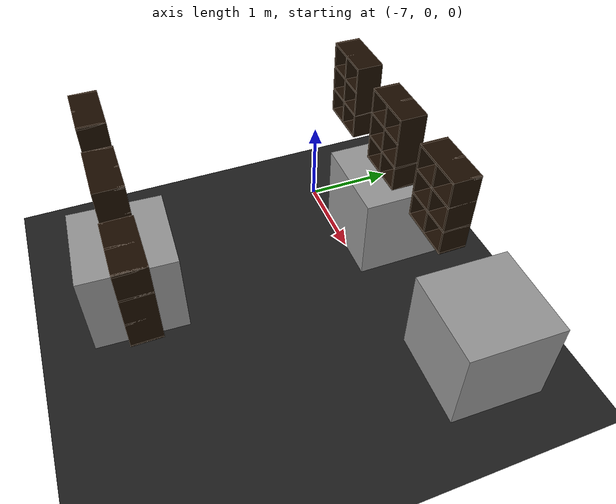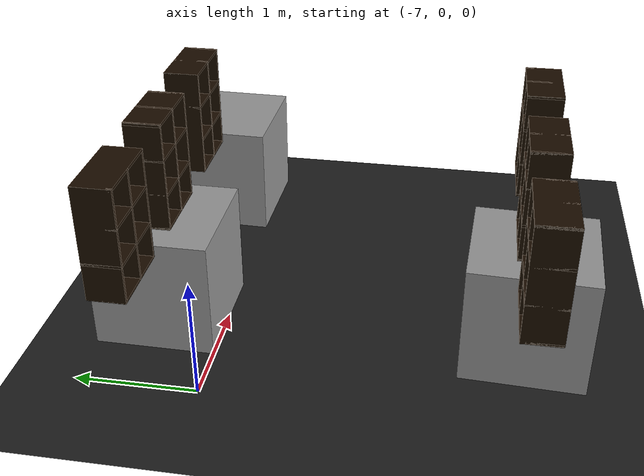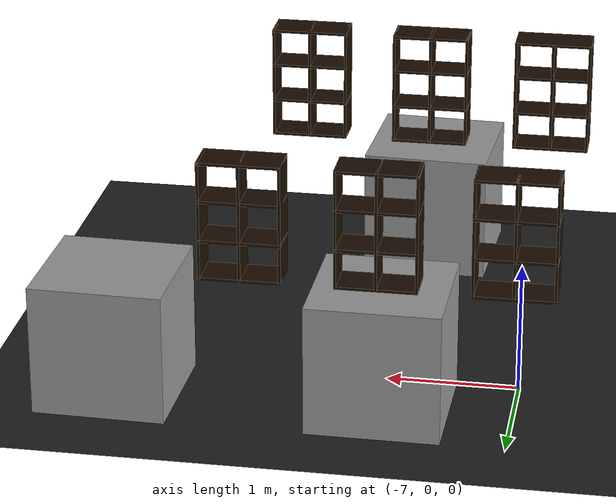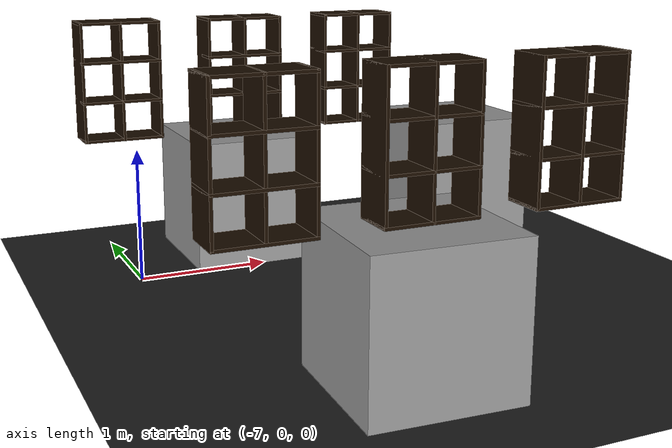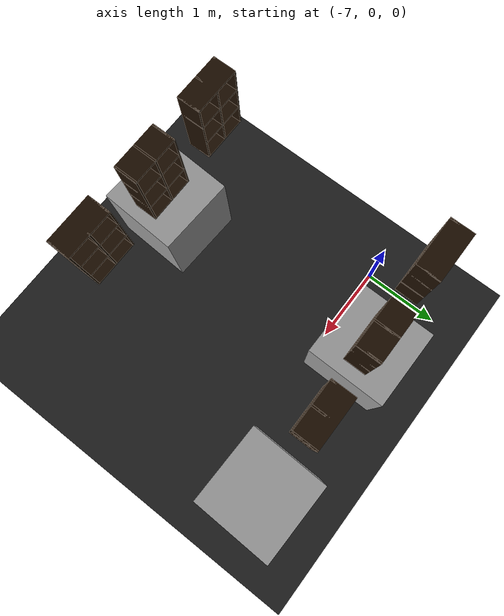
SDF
<sdf version="1.7">
 <world name="default">
  <model name="ground_plane">
   <static>1</static>
   <link name="link">
    <collision name="collision">
     <geometry><plane><normal>0 0 1</normal><size>100 100</size></plane></geometry>
     <surface><friction><ode><mu>100</mu><mu2>50</mu2></ode></friction></surface>
    </collision>
    <visual name="visual">
     <cast_shadows>0</cast_shadows>
     <geometry><plane><normal>0 0 1</normal><size>100 100</size></plane></geometry>
     <material>
      <script><uri>file://media/materials/scripts/gazebo.material</uri><name>Gazebo/BlackTransparent</name></script>
     </material>
    </visual>
   </link>
  </model>
  <model name="unit_box_1">
   <pose>-6.03193 0.498311 0.5 -0 -0 -0.007554</pose>
   <link name="link">
    <inertial>
     <mass>1</mass>
     <inertia>
      <ixx>0.166667</ixx>
      <ixy>0</ixy>
      <ixz>0</ixz>
      <iyy>0.166667</iyy>
      <iyz>0</iyz>
      <izz>0.166667</izz>
     </inertia>
    </inertial>
    <collision name="collision"><geometry><box><size>1 1 1</size></box></geometry></collision>
    <visual name="visual">
     <geometry><box><size>1 1 1</size></box></geometry>
     <material>
      <script><name>Gazebo/Grey</name><uri>file://media/materials/scripts/gazebo.material</uri></script>
     </material>
    </visual>
   </link>
  </model>
  <model name="unit_box_2">
   <pose>-6.04016 -2.49948 0.5 0 -0 -0.047603</pose>
   <link name="link">
    <inertial>
     <mass>1</mass>
     <inertia>
      <ixx>0.166667</ixx>
      <ixy>0</ixy>
      <ixz>0</ixz>
      <iyy>0.166667</iyy>
      <iyz>0</iyz>
      <izz>0.166667</izz>
     </inertia>
    </inertial>
    <collision name="collision"><geometry><box><size>1 1 1</size></box></geometry></collision>
    <visual name="visual">
     <geometry><box><size>1 1 1</size></box></geometry>
     <material>
      <script><name>Gazebo/Grey</name><uri>file://media/materials/scripts/gazebo.material</uri></script>
     </material>
    </visual>
   </link>
  </model>
  <model name="unit_box_16">
   <pose>-4.00948 0.496848 0.5 0 -0 -0.024916</pose>
   <link name="link">
    <inertial>
     <mass>1</mass>
     <inertia>
      <ixx>0.166667</ixx>
      <ixy>0</ixy>
      <ixz>0</ixz>
      <iyy>0.166667</iyy>
      <iyz>0</iyz>
      <izz>0.166667</izz>
     </inertia>
    </inertial>
    <collision name="collision"><geometry><box><size>1 1 1</size></box></geometry></collision>
    <visual name="visual">
     <geometry><box><size>1 1 1</size></box></geometry>
     <material>
      <script><name>Gazebo/Grey</name><uri>file://media/materials/scripts/gazebo.material</uri></script>
     </material>
    </visual>
   </link>
  </model>
  <model name="6_Cube_StorageE_clone_28">
   <link name="Wall_0">
    <pose>0 0 0.01 0 -0 0</pose>
    <inertial>
     <mass>1.6201</mass>
     <inertia><ixx>0.0119</ixx><iyy>0.0631</iyy><izz>0.0513</izz><ixy>0</ixy><ixz>0</ixz><iyz>0</iyz></inertia>
    </inertial>
    <collision name="Wall_0_Collision"><geometry><box><size>0.616 0.296 0.02</size></box></geometry></collision>
    <visual name="Wall_0_Visual">
     <geometry><box><size>0.616 0.296 0.02</size></box></geometry>
     <material>
      <script><uri>file://media/materials/scripts/gazebo.material</uri><name>Gazebo/Grey</name></script>
      <ambient>0.105882 0.0509804 0 1</ambient>
     </material>
    </visual>
   </link>
   <joint name="0_2" type="fixed">
    <pose>-0.308 0 0 0 -0 0</pose>
    <parent>Wall_2</parent>
    <child>Wall_0</child>
    <axis><xyz>1 0 0</xyz><limit><lower>-1e+16</lower><upper>1e+16</upper></limit></axis>
   </joint>
   <joint name="0_12" type="fixed">
    <parent>Wall_12</parent>
    <child>Wall_0</child>
    <axis><xyz>0 0 1</xyz><limit><lower>-1e+16</lower><upper>1e+16</upper></limit></axis>
   </joint>
   <joint name="0_4" type="fixed">
    <pose>0.308 0 0 0 -0 0</pose>
    <parent>Wall_4</parent>
    <child>Wall_0</child>
    <axis><xyz>1 0 0</xyz><limit><lower>-1e+16</lower><upper>1e+16</upper></limit></axis>
   </joint>
   <link name="Wall_10">
    <pose>0 0 0.61 0 -0 0</pose>
    <inertial>
     <mass>1.6201</mass>
     <inertia><ixx>0.0119</ixx><iyy>0.0631</iyy><izz>0.0513</izz><ixy>0</ixy><ixz>0</ixz><iyz>0</iyz></inertia>
    </inertial>
    <collision name="Wall_10_Collision"><geometry><box><size>0.616 0.296 0.02</size></box></geometry></collision>
    <visual name="Wall_10_Visual">
     <geometry><box><size>0.616 0.296 0.02</size></box></geometry>
     <material>
      <script><uri>file://media/materials/scripts/gazebo.material</uri><name>Gazebo/Grey</name></script>
      <ambient>0.105882 0.0509804 0 1</ambient>
     </material>
    </visual>
   </link>
   <joint name="10_2" type="fixed">
    <pose>-0.308 0 0 0 -0 0</pose>
    <parent>Wall_2</parent>
    <child>Wall_10</child>
    <axis><xyz>1 0 0</xyz><limit><lower>-1e+16</lower><upper>1e+16</upper></limit></axis>
   </joint>
   <joint name="10_12" type="fixed">
    <parent>Wall_12</parent>
    <child>Wall_10</child>
    <axis><xyz>0 0 1</xyz><limit><lower>-1e+16</lower><upper>1e+16</upper></limit></axis>
   </joint>
   <joint name="10_4" type="fixed">
    <pose>0.308 0 0 0 -0 0</pose>
    <parent>Wall_4</parent>
    <child>Wall_10</child>
    <axis><xyz>1 0 0</xyz><limit><lower>-1e+16</lower><upper>1e+16</upper></limit></axis>
   </joint>
   <link name="Wall_12">
    <pose>0 0 0.4575 0 -0 0</pose>
    <inertial>
     <mass>2.4065</mass>
     <inertia><ixx>0.0177</ixx><iyy>0.1855</iyy><izz>0.168</izz><ixy>0</ixy><ixz>0</ixz><iyz>0</iyz></inertia>
    </inertial>
    <collision name="Wall_12_Collision"><geometry><box><size>0.02 0.296 0.915</size></box></geometry></collision>
    <visual name="Wall_12_Visual">
     <geometry><box><size>0.02 0.296 0.915</size></box></geometry>
     <material>
      <script><uri>file://media/materials/scripts/gazebo.material</uri><name>Gazebo/Grey</name></script>
      <ambient>0.105882 0.0509804 0 1</ambient>
     </material>
    </visual>
   </link>
   <link name="Wall_2">
    <pose>-0.298 0 0.4575 0 -0 0</pose>
    <inertial>
     <mass>2.4065</mass>
     <inertia><ixx>0.0177</ixx><iyy>0.1855</iyy><izz>0.168</izz><ixy>0</ixy><ixz>0</ixz><iyz>0</iyz></inertia>
    </inertial>
    <collision name="Wall_2_Collision"><geometry><box><size>0.02 0.296 0.915</size></box></geometry></collision>
    <visual name="Wall_2_Visual">
     <geometry><box><size>0.02 0.296 0.915</size></box></geometry>
     <material>
      <script><uri>file://media/materials/scripts/gazebo.material</uri><name>Gazebo/Grey</name></script>
      <ambient>0.105882 0.0509804 0 1</ambient>
     </material>
    </visual>
   </link>
   <link name="Wall_4">
    <pose>0.298 0 0.4575 0 -0 0</pose>
    <inertial>
     <mass>2.4065</mass>
     <inertia><ixx>0.0177</ixx><iyy>0.1855</iyy><izz>0.168</izz><ixy>0</ixy><ixz>0</ixz><iyz>0</iyz></inertia>
    </inertial>
    <collision name="Wall_4_Collision"><geometry><box><size>0.02 0.296 0.915</size></box></geometry></collision>
    <visual name="Wall_4_Visual">
     <geometry><box><size>0.02 0.296 0.915</size></box></geometry>
     <material>
      <script><uri>file://media/materials/scripts/gazebo.material</uri><name>Gazebo/Grey</name></script>
      <ambient>0.105882 0.0509804 0 1</ambient>
     </material>
    </visual>
   </link>
   <link name="Wall_6">
    <pose>0 0 0.905 0 -0 0</pose>
    <inertial>
     <mass>1.6201</mass>
     <inertia><ixx>0.0119</ixx><iyy>0.0631</iyy><izz>0.0513</izz><ixy>0</ixy><ixz>0</ixz><iyz>0</iyz></inertia>
    </inertial>
    <collision name="Wall_6_Collision"><geometry><box><size>0.616 0.296 0.02</size></box></geometry></collision>
    <visual name="Wall_6_Visual">
     <geometry><box><size>0.616 0.296 0.02</size></box></geometry>
     <material>
      <script><uri>file://media/materials/scripts/gazebo.material</uri><name>Gazebo/Grey</name></script>
      <ambient>0.105882 0.0509804 0 1</ambient>
     </material>
    </visual>
   </link>
   <joint name="6_2" type="fixed">
    <pose>-0.308 0 0 0 -0 0</pose>
    <parent>Wall_2</parent>
    <child>Wall_6</child>
    <axis><xyz>2 0 0</xyz><limit><lower>-1e+16</lower><upper>1e+16</upper></limit></axis>
   </joint>
   <joint name="6_12" type="fixed">
    <parent>Wall_12</parent>
    <child>Wall_6</child>
    <axis><xyz>0 0 1</xyz><limit><lower>-1e+16</lower><upper>1e+16</upper></limit></axis>
   </joint>
   <joint name="6_4" type="fixed">
    <pose>0.308 0 0 0 -0 0</pose>
    <parent>Wall_4</parent>
    <child>Wall_6</child>
    <axis><xyz>1 0 0</xyz><limit><lower>-1e+16</lower><upper>1e+16</upper></limit></axis>
   </joint>
   <link name="Wall_8">
    <pose>0 0 0.305 0 -0 0</pose>
    <inertial>
     <mass>1.6201</mass>
     <inertia><ixx>0.0119</ixx><iyy>0.0631</iyy><izz>0.0513</izz><ixy>0</ixy><ixz>0</ixz><iyz>0</iyz></inertia>
    </inertial>
    <collision name="Wall_8_Collision"><geometry><box><size>0.616 0.296 0.02</size></box></geometry></collision>
    <visual name="Wall_8_Visual">
     <geometry><box><size>0.616 0.296 0.02</size></box></geometry>
     <material>
      <script><uri>file://media/materials/scripts/gazebo.material</uri><name>Gazebo/Grey</name></script>
      <ambient>0.105882 0.0509804 0 1</ambient>
     </material>
    </visual>
   </link>
   <joint name="8_2" type="fixed">
    <pose>-0.308 0 0 0 -0 0</pose>
    <parent>Wall_2</parent>
    <child>Wall_8</child>
    <axis><xyz>1 0 0</xyz><limit><lower>-1e+16</lower><upper>1e+16</upper></limit></axis>
   </joint>
   <joint name="8_12" type="fixed">
    <parent>Wall_12</parent>
    <child>Wall_8</child>
    <axis><xyz>0 0 1</xyz><limit><lower>-1e+16</lower><upper>1e+16</upper></limit></axis>
   </joint>
   <joint name="8_4" type="fixed">
    <pose>0.308 0 0 0 -0 0</pose>
    <parent>Wall_4</parent>
    <child>Wall_8</child>
    <axis><xyz>1 0 0</xyz><limit><lower>-1e+16</lower><upper>1e+16</upper></limit></axis>
   </joint>
   <static>1</static>
   <pose>-7 0.5 1.01 0 -0 0</pose>
  </model>
  <model name="6_Cube_StorageE_clone_29">
   <link name="Wall_0">
    <pose>0 0 0.01 0 -0 0</pose>
    <inertial>
     <mass>1.6201</mass>
     <inertia><ixx>0.0119</ixx><iyy>0.0631</iyy><izz>0.0513</izz><ixy>0</ixy><ixz>0</ixz><iyz>0</iyz></inertia>
    </inertial>
    <collision name="Wall_0_Collision"><geometry><box><size>0.616 0.296 0.02</size></box></geometry></collision>
    <visual name="Wall_0_Visual">
     <geometry><box><size>0.616 0.296 0.02</size></box></geometry>
     <material>
      <script><uri>file://media/materials/scripts/gazebo.material</uri><name>Gazebo/Grey</name></script>
      <ambient>0.105882 0.0509804 0 1</ambient>
     </material>
    </visual>
   </link>
   <joint name="0_2" type="fixed">
    <pose>-0.308 0 0 0 -0 0</pose>
    <parent>Wall_2</parent>
    <child>Wall_0</child>
    <axis><xyz>1 0 0</xyz><limit><lower>-1e+16</lower><upper>1e+16</upper></limit></axis>
   </joint>
   <joint name="0_12" type="fixed">
    <parent>Wall_12</parent>
    <child>Wall_0</child>
    <axis><xyz>0 0 1</xyz><limit><lower>-1e+16</lower><upper>1e+16</upper></limit></axis>
   </joint>
   <joint name="0_4" type="fixed">
    <pose>0.308 0 0 0 -0 0</pose>
    <parent>Wall_4</parent>
    <child>Wall_0</child>
    <axis><xyz>1 0 0</xyz><limit><lower>-1e+16</lower><upper>1e+16</upper></limit></axis>
   </joint>
   <link name="Wall_10">
    <pose>0 0 0.61 0 -0 0</pose>
    <inertial>
     <mass>1.6201</mass>
     <inertia><ixx>0.0119</ixx><iyy>0.0631</iyy><izz>0.0513</izz><ixy>0</ixy><ixz>0</ixz><iyz>0</iyz></inertia>
    </inertial>
    <collision name="Wall_10_Collision"><geometry><box><size>0.616 0.296 0.02</size></box></geometry></collision>
    <visual name="Wall_10_Visual">
     <geometry><box><size>0.616 0.296 0.02</size></box></geometry>
     <material>
      <script><uri>file://media/materials/scripts/gazebo.material</uri><name>Gazebo/Grey</name></script>
      <ambient>0.105882 0.0509804 0 1</ambient>
     </material>
    </visual>
   </link>
   <joint name="10_2" type="fixed">
    <pose>-0.308 0 0 0 -0 0</pose>
    <parent>Wall_2</parent>
    <child>Wall_10</child>
    <axis><xyz>1 0 0</xyz><limit><lower>-1e+16</lower><upper>1e+16</upper></limit></axis>
   </joint>
   <joint name="10_12" type="fixed">
    <parent>Wall_12</parent>
    <child>Wall_10</child>
    <axis><xyz>0 0 1</xyz><limit><lower>-1e+16</lower><upper>1e+16</upper></limit></axis>
   </joint>
   <joint name="10_4" type="fixed">
    <pose>0.308 0 0 0 -0 0</pose>
    <parent>Wall_4</parent>
    <child>Wall_10</child>
    <axis><xyz>1 0 0</xyz><limit><lower>-1e+16</lower><upper>1e+16</upper></limit></axis>
   </joint>
   <link name="Wall_12">
    <pose>0 0 0.4575 0 -0 0</pose>
    <inertial>
     <mass>2.4065</mass>
     <inertia><ixx>0.0177</ixx><iyy>0.1855</iyy><izz>0.168</izz><ixy>0</ixy><ixz>0</ixz><iyz>0</iyz></inertia>
    </inertial>
    <collision name="Wall_12_Collision"><geometry><box><size>0.02 0.296 0.915</size></box></geometry></collision>
    <visual name="Wall_12_Visual">
     <geometry><box><size>0.02 0.296 0.915</size></box></geometry>
     <material>
      <script><uri>file://media/materials/scripts/gazebo.material</uri><name>Gazebo/Grey</name></script>
      <ambient>0.105882 0.0509804 0 1</ambient>
     </material>
    </visual>
   </link>
   <link name="Wall_2">
    <pose>-0.298 0 0.4575 0 -0 0</pose>
    <inertial>
     <mass>2.4065</mass>
     <inertia><ixx>0.0177</ixx><iyy>0.1855</iyy><izz>0.168</izz><ixy>0</ixy><ixz>0</ixz><iyz>0</iyz></inertia>
    </inertial>
    <collision name="Wall_2_Collision"><geometry><box><size>0.02 0.296 0.915</size></box></geometry></collision>
    <visual name="Wall_2_Visual">
     <geometry><box><size>0.02 0.296 0.915</size></box></geometry>
     <material>
      <script><uri>file://media/materials/scripts/gazebo.material</uri><name>Gazebo/Grey</name></script>
      <ambient>0.105882 0.0509804 0 1</ambient>
     </material>
    </visual>
   </link>
   <link name="Wall_4">
    <pose>0.298 0 0.4575 0 -0 0</pose>
    <inertial>
     <mass>2.4065</mass>
     <inertia><ixx>0.0177</ixx><iyy>0.1855</iyy><izz>0.168</izz><ixy>0</ixy><ixz>0</ixz><iyz>0</iyz></inertia>
    </inertial>
    <collision name="Wall_4_Collision"><geometry><box><size>0.02 0.296 0.915</size></box></geometry></collision>
    <visual name="Wall_4_Visual">
     <geometry><box><size>0.02 0.296 0.915</size></box></geometry>
     <material>
      <script><uri>file://media/materials/scripts/gazebo.material</uri><name>Gazebo/Grey</name></script>
      <ambient>0.105882 0.0509804 0 1</ambient>
     </material>
    </visual>
   </link>
   <link name="Wall_6">
    <pose>0 0 0.905 0 -0 0</pose>
    <inertial>
     <mass>1.6201</mass>
     <inertia><ixx>0.0119</ixx><iyy>0.0631</iyy><izz>0.0513</izz><ixy>0</ixy><ixz>0</ixz><iyz>0</iyz></inertia>
    </inertial>
    <collision name="Wall_6_Collision"><geometry><box><size>0.616 0.296 0.02</size></box></geometry></collision>
    <visual name="Wall_6_Visual">
     <geometry><box><size>0.616 0.296 0.02</size></box></geometry>
     <material>
      <script><uri>file://media/materials/scripts/gazebo.material</uri><name>Gazebo/Grey</name></script>
      <ambient>0.105882 0.0509804 0 1</ambient>
     </material>
    </visual>
   </link>
   <joint name="6_2" type="fixed">
    <pose>-0.308 0 0 0 -0 0</pose>
    <parent>Wall_2</parent>
    <child>Wall_6</child>
    <axis><xyz>2 0 0</xyz><limit><lower>-1e+16</lower><upper>1e+16</upper></limit></axis>
   </joint>
   <joint name="6_12" type="fixed">
    <parent>Wall_12</parent>
    <child>Wall_6</child>
    <axis><xyz>0 0 1</xyz><limit><lower>-1e+16</lower><upper>1e+16</upper></limit></axis>
   </joint>
   <joint name="6_4" type="fixed">
    <pose>0.308 0 0 0 -0 0</pose>
    <parent>Wall_4</parent>
    <child>Wall_6</child>
    <axis><xyz>1 0 0</xyz><limit><lower>-1e+16</lower><upper>1e+16</upper></limit></axis>
   </joint>
   <link name="Wall_8">
    <pose>0 0 0.305 0 -0 0</pose>
    <inertial>
     <mass>1.6201</mass>
     <inertia><ixx>0.0119</ixx><iyy>0.0631</iyy><izz>0.0513</izz><ixy>0</ixy><ixz>0</ixz><iyz>0</iyz></inertia>
    </inertial>
    <collision name="Wall_8_Collision"><geometry><box><size>0.616 0.296 0.02</size></box></geometry></collision>
    <visual name="Wall_8_Visual">
     <geometry><box><size>0.616 0.296 0.02</size></box></geometry>
     <material>
      <script><uri>file://media/materials/scripts/gazebo.material</uri><name>Gazebo/Grey</name></script>
      <ambient>0.105882 0.0509804 0 1</ambient>
     </material>
    </visual>
   </link>
   <joint name="8_2" type="fixed">
    <pose>-0.308 0 0 0 -0 0</pose>
    <parent>Wall_2</parent>
    <child>Wall_8</child>
    <axis><xyz>1 0 0</xyz><limit><lower>-1e+16</lower><upper>1e+16</upper></limit></axis>
   </joint>
   <joint name="8_12" type="fixed">
    <parent>Wall_12</parent>
    <child>Wall_8</child>
    <axis><xyz>0 0 1</xyz><limit><lower>-1e+16</lower><upper>1e+16</upper></limit></axis>
   </joint>
   <joint name="8_4" type="fixed">
    <pose>0.308 0 0 0 -0 0</pose>
    <parent>Wall_4</parent>
    <child>Wall_8</child>
    <axis><xyz>1 0 0</xyz><limit><lower>-1e+16</lower><upper>1e+16</upper></limit></axis>
   </joint>
   <static>1</static>
   <pose>-6 0.5 1.01 0 -0 0</pose>
  </model>
  <model name="6_Cube_StorageE_clone_30">
   <link name="Wall_0">
    <pose>0 0 0.01 0 -0 0</pose>
    <inertial>
     <mass>1.6201</mass>
     <inertia><ixx>0.0119</ixx><iyy>0.0631</iyy><izz>0.0513</izz><ixy>0</ixy><ixz>0</ixz><iyz>0</iyz></inertia>
    </inertial>
    <collision name="Wall_0_Collision"><geometry><box><size>0.616 0.296 0.02</size></box></geometry></collision>
    <visual name="Wall_0_Visual">
     <geometry><box><size>0.616 0.296 0.02</size></box></geometry>
     <material>
      <script><uri>file://media/materials/scripts/gazebo.material</uri><name>Gazebo/Grey</name></script>
      <ambient>0.105882 0.0509804 0 1</ambient>
     </material>
    </visual>
   </link>
   <joint name="0_2" type="fixed">
    <pose>-0.308 0 0 0 -0 0</pose>
    <parent>Wall_2</parent>
    <child>Wall_0</child>
    <axis><xyz>1 0 0</xyz><limit><lower>-1e+16</lower><upper>1e+16</upper></limit></axis>
   </joint>
   <joint name="0_12" type="fixed">
    <parent>Wall_12</parent>
    <child>Wall_0</child>
    <axis><xyz>0 0 1</xyz><limit><lower>-1e+16</lower><upper>1e+16</upper></limit></axis>
   </joint>
   <joint name="0_4" type="fixed">
    <pose>0.308 0 0 0 -0 0</pose>
    <parent>Wall_4</parent>
    <child>Wall_0</child>
    <axis><xyz>1 0 0</xyz><limit><lower>-1e+16</lower><upper>1e+16</upper></limit></axis>
   </joint>
   <link name="Wall_10">
    <pose>0 0 0.61 0 -0 0</pose>
    <inertial>
     <mass>1.6201</mass>
     <inertia><ixx>0.0119</ixx><iyy>0.0631</iyy><izz>0.0513</izz><ixy>0</ixy><ixz>0</ixz><iyz>0</iyz></inertia>
    </inertial>
    <collision name="Wall_10_Collision"><geometry><box><size>0.616 0.296 0.02</size></box></geometry></collision>
    <visual name="Wall_10_Visual">
     <geometry><box><size>0.616 0.296 0.02</size></box></geometry>
     <material>
      <script><uri>file://media/materials/scripts/gazebo.material</uri><name>Gazebo/Grey</name></script>
      <ambient>0.105882 0.0509804 0 1</ambient>
     </material>
    </visual>
   </link>
   <joint name="10_2" type="fixed">
    <pose>-0.308 0 0 0 -0 0</pose>
    <parent>Wall_2</parent>
    <child>Wall_10</child>
    <axis><xyz>1 0 0</xyz><limit><lower>-1e+16</lower><upper>1e+16</upper></limit></axis>
   </joint>
   <joint name="10_12" type="fixed">
    <parent>Wall_12</parent>
    <child>Wall_10</child>
    <axis><xyz>0 0 1</xyz><limit><lower>-1e+16</lower><upper>1e+16</upper></limit></axis>
   </joint>
   <joint name="10_4" type="fixed">
    <pose>0.308 0 0 0 -0 0</pose>
    <parent>Wall_4</parent>
    <child>Wall_10</child>
    <axis><xyz>1 0 0</xyz><limit><lower>-1e+16</lower><upper>1e+16</upper></limit></axis>
   </joint>
   <link name="Wall_12">
    <pose>0 0 0.4575 0 -0 0</pose>
    <inertial>
     <mass>2.4065</mass>
     <inertia><ixx>0.0177</ixx><iyy>0.1855</iyy><izz>0.168</izz><ixy>0</ixy><ixz>0</ixz><iyz>0</iyz></inertia>
    </inertial>
    <collision name="Wall_12_Collision"><geometry><box><size>0.02 0.296 0.915</size></box></geometry></collision>
    <visual name="Wall_12_Visual">
     <geometry><box><size>0.02 0.296 0.915</size></box></geometry>
     <material>
      <script><uri>file://media/materials/scripts/gazebo.material</uri><name>Gazebo/Grey</name></script>
      <ambient>0.105882 0.0509804 0 1</ambient>
     </material>
    </visual>
   </link>
   <link name="Wall_2">
    <pose>-0.298 0 0.4575 0 -0 0</pose>
    <inertial>
     <mass>2.4065</mass>
     <inertia><ixx>0.0177</ixx><iyy>0.1855</iyy><izz>0.168</izz><ixy>0</ixy><ixz>0</ixz><iyz>0</iyz></inertia>
    </inertial>
    <collision name="Wall_2_Collision"><geometry><box><size>0.02 0.296 0.915</size></box></geometry></collision>
    <visual name="Wall_2_Visual">
     <geometry><box><size>0.02 0.296 0.915</size></box></geometry>
     <material>
      <script><uri>file://media/materials/scripts/gazebo.material</uri><name>Gazebo/Grey</name></script>
      <ambient>0.105882 0.0509804 0 1</ambient>
     </material>
    </visual>
   </link>
   <link name="Wall_4">
    <pose>0.298 0 0.4575 0 -0 0</pose>
    <inertial>
     <mass>2.4065</mass>
     <inertia><ixx>0.0177</ixx><iyy>0.1855</iyy><izz>0.168</izz><ixy>0</ixy><ixz>0</ixz><iyz>0</iyz></inertia>
    </inertial>
    <collision name="Wall_4_Collision"><geometry><box><size>0.02 0.296 0.915</size></box></geometry></collision>
    <visual name="Wall_4_Visual">
     <geometry><box><size>0.02 0.296 0.915</size></box></geometry>
     <material>
      <script><uri>file://media/materials/scripts/gazebo.material</uri><name>Gazebo/Grey</name></script>
      <ambient>0.105882 0.0509804 0 1</ambient>
     </material>
    </visual>
   </link>
   <link name="Wall_6">
    <pose>0 0 0.905 0 -0 0</pose>
    <inertial>
     <mass>1.6201</mass>
     <inertia><ixx>0.0119</ixx><iyy>0.0631</iyy><izz>0.0513</izz><ixy>0</ixy><ixz>0</ixz><iyz>0</iyz></inertia>
    </inertial>
    <collision name="Wall_6_Collision"><geometry><box><size>0.616 0.296 0.02</size></box></geometry></collision>
    <visual name="Wall_6_Visual">
     <geometry><box><size>0.616 0.296 0.02</size></box></geometry>
     <material>
      <script><uri>file://media/materials/scripts/gazebo.material</uri><name>Gazebo/Grey</name></script>
      <ambient>0.105882 0.0509804 0 1</ambient>
     </material>
    </visual>
   </link>
   <joint name="6_2" type="fixed">
    <pose>-0.308 0 0 0 -0 0</pose>
    <parent>Wall_2</parent>
    <child>Wall_6</child>
    <axis><xyz>2 0 0</xyz><limit><lower>-1e+16</lower><upper>1e+16</upper></limit></axis>
   </joint>
   <joint name="6_12" type="fixed">
    <parent>Wall_12</parent>
    <child>Wall_6</child>
    <axis><xyz>0 0 1</xyz><limit><lower>-1e+16</lower><upper>1e+16</upper></limit></axis>
   </joint>
   <joint name="6_4" type="fixed">
    <pose>0.308 0 0 0 -0 0</pose>
    <parent>Wall_4</parent>
    <child>Wall_6</child>
    <axis><xyz>1 0 0</xyz><limit><lower>-1e+16</lower><upper>1e+16</upper></limit></axis>
   </joint>
   <link name="Wall_8">
    <pose>0 0 0.305 0 -0 0</pose>
    <inertial>
     <mass>1.6201</mass>
     <inertia><ixx>0.0119</ixx><iyy>0.0631</iyy><izz>0.0513</izz><ixy>0</ixy><ixz>0</ixz><iyz>0</iyz></inertia>
    </inertial>
    <collision name="Wall_8_Collision"><geometry><box><size>0.616 0.296 0.02</size></box></geometry></collision>
    <visual name="Wall_8_Visual">
     <geometry><box><size>0.616 0.296 0.02</size></box></geometry>
     <material>
      <script><uri>file://media/materials/scripts/gazebo.material</uri><name>Gazebo/Grey</name></script>
      <ambient>0.105882 0.0509804 0 1</ambient>
     </material>
    </visual>
   </link>
   <joint name="8_2" type="fixed">
    <pose>-0.308 0 0 0 -0 0</pose>
    <parent>Wall_2</parent>
    <child>Wall_8</child>
    <axis><xyz>1 0 0</xyz><limit><lower>-1e+16</lower><upper>1e+16</upper></limit></axis>
   </joint>
   <joint name="8_12" type="fixed">
    <parent>Wall_12</parent>
    <child>Wall_8</child>
    <axis><xyz>0 0 1</xyz><limit><lower>-1e+16</lower><upper>1e+16</upper></limit></axis>
   </joint>
   <joint name="8_4" type="fixed">
    <pose>0.308 0 0 0 -0 0</pose>
    <parent>Wall_4</parent>
    <child>Wall_8</child>
    <axis><xyz>1 0 0</xyz><limit><lower>-1e+16</lower><upper>1e+16</upper></limit></axis>
   </joint>
   <static>1</static>
   <pose>-5 0.5 1.01 0 -0 0</pose>
  </model>
  <model name="6_Cube_StorageE_clone_55">
   <link name="Wall_0">
    <pose>0 0 0.01 0 -0 0</pose>
    <inertial>
     <mass>1.6201</mass>
     <inertia><ixx>0.0119</ixx><iyy>0.0631</iyy><izz>0.0513</izz><ixy>0</ixy><ixz>0</ixz><iyz>0</iyz></inertia>
    </inertial>
    <collision name="Wall_0_Collision"><geometry><box><size>0.616 0.296 0.02</size></box></geometry></collision>
    <visual name="Wall_0_Visual">
     <geometry><box><size>0.616 0.296 0.02</size></box></geometry>
     <material>
      <script><uri>file://media/materials/scripts/gazebo.material</uri><name>Gazebo/Grey</name></script>
      <ambient>0.105882 0.0509804 0 1</ambient>
     </material>
    </visual>
   </link>
   <joint name="0_2" type="fixed">
    <pose>-0.308 0 0 0 -0 0</pose>
    <parent>Wall_2</parent>
    <child>Wall_0</child>
    <axis><xyz>1 0 0</xyz><limit><lower>-1e+16</lower><upper>1e+16</upper></limit></axis>
   </joint>
   <joint name="0_12" type="fixed">
    <parent>Wall_12</parent>
    <child>Wall_0</child>
    <axis><xyz>0 0 1</xyz><limit><lower>-1e+16</lower><upper>1e+16</upper></limit></axis>
   </joint>
   <joint name="0_4" type="fixed">
    <pose>0.308 0 0 0 -0 0</pose>
    <parent>Wall_4</parent>
    <child>Wall_0</child>
    <axis><xyz>1 0 0</xyz><limit><lower>-1e+16</lower><upper>1e+16</upper></limit></axis>
   </joint>
   <link name="Wall_10">
    <pose>0 0 0.61 0 -0 0</pose>
    <inertial>
     <mass>1.6201</mass>
     <inertia><ixx>0.0119</ixx><iyy>0.0631</iyy><izz>0.0513</izz><ixy>0</ixy><ixz>0</ixz><iyz>0</iyz></inertia>
    </inertial>
    <collision name="Wall_10_Collision"><geometry><box><size>0.616 0.296 0.02</size></box></geometry></collision>
    <visual name="Wall_10_Visual">
     <geometry><box><size>0.616 0.296 0.02</size></box></geometry>
     <material>
      <script><uri>file://media/materials/scripts/gazebo.material</uri><name>Gazebo/Grey</name></script>
      <ambient>0.105882 0.0509804 0 1</ambient>
     </material>
    </visual>
   </link>
   <joint name="10_2" type="fixed">
    <pose>-0.308 0 0 0 -0 0</pose>
    <parent>Wall_2</parent>
    <child>Wall_10</child>
    <axis><xyz>1 0 0</xyz><limit><lower>-1e+16</lower><upper>1e+16</upper></limit></axis>
   </joint>
   <joint name="10_12" type="fixed">
    <parent>Wall_12</parent>
    <child>Wall_10</child>
    <axis><xyz>0 0 1</xyz><limit><lower>-1e+16</lower><upper>1e+16</upper></limit></axis>
   </joint>
   <joint name="10_4" type="fixed">
    <pose>0.308 0 0 0 -0 0</pose>
    <parent>Wall_4</parent>
    <child>Wall_10</child>
    <axis><xyz>1 0 0</xyz><limit><lower>-1e+16</lower><upper>1e+16</upper></limit></axis>
   </joint>
   <link name="Wall_12">
    <pose>0 0 0.4575 0 -0 0</pose>
    <inertial>
     <mass>2.4065</mass>
     <inertia><ixx>0.0177</ixx><iyy>0.1855</iyy><izz>0.168</izz><ixy>0</ixy><ixz>0</ixz><iyz>0</iyz></inertia>
    </inertial>
    <collision name="Wall_12_Collision"><geometry><box><size>0.02 0.296 0.915</size></box></geometry></collision>
    <visual name="Wall_12_Visual">
     <geometry><box><size>0.02 0.296 0.915</size></box></geometry>
     <material>
      <script><uri>file://media/materials/scripts/gazebo.material</uri><name>Gazebo/Grey</name></script>
      <ambient>0.105882 0.0509804 0 1</ambient>
     </material>
    </visual>
   </link>
   <link name="Wall_2">
    <pose>-0.298 0 0.4575 0 -0 0</pose>
    <inertial>
     <mass>2.4065</mass>
     <inertia><ixx>0.0177</ixx><iyy>0.1855</iyy><izz>0.168</izz><ixy>0</ixy><ixz>0</ixz><iyz>0</iyz></inertia>
    </inertial>
    <collision name="Wall_2_Collision"><geometry><box><size>0.02 0.296 0.915</size></box></geometry></collision>
    <visual name="Wall_2_Visual">
     <geometry><box><size>0.02 0.296 0.915</size></box></geometry>
     <material>
      <script><uri>file://media/materials/scripts/gazebo.material</uri><name>Gazebo/Grey</name></script>
      <ambient>0.105882 0.0509804 0 1</ambient>
     </material>
    </visual>
   </link>
   <link name="Wall_4">
    <pose>0.298 0 0.4575 0 -0 0</pose>
    <inertial>
     <mass>2.4065</mass>
     <inertia><ixx>0.0177</ixx><iyy>0.1855</iyy><izz>0.168</izz><ixy>0</ixy><ixz>0</ixz><iyz>0</iyz></inertia>
    </inertial>
    <collision name="Wall_4_Collision"><geometry><box><size>0.02 0.296 0.915</size></box></geometry></collision>
    <visual name="Wall_4_Visual">
     <geometry><box><size>0.02 0.296 0.915</size></box></geometry>
     <material>
      <script><uri>file://media/materials/scripts/gazebo.material</uri><name>Gazebo/Grey</name></script>
      <ambient>0.105882 0.0509804 0 1</ambient>
     </material>
    </visual>
   </link>
   <link name="Wall_6">
    <pose>0 0 0.905 0 -0 0</pose>
    <inertial>
     <mass>1.6201</mass>
     <inertia><ixx>0.0119</ixx><iyy>0.0631</iyy><izz>0.0513</izz><ixy>0</ixy><ixz>0</ixz><iyz>0</iyz></inertia>
    </inertial>
    <collision name="Wall_6_Collision"><geometry><box><size>0.616 0.296 0.02</size></box></geometry></collision>
    <visual name="Wall_6_Visual">
     <geometry><box><size>0.616 0.296 0.02</size></box></geometry>
     <material>
      <script><uri>file://media/materials/scripts/gazebo.material</uri><name>Gazebo/Grey</name></script>
      <ambient>0.105882 0.0509804 0 1</ambient>
     </material>
    </visual>
   </link>
   <joint name="6_2" type="fixed">
    <pose>-0.308 0 0 0 -0 0</pose>
    <parent>Wall_2</parent>
    <child>Wall_6</child>
    <axis><xyz>2 0 0</xyz><limit><lower>-1e+16</lower><upper>1e+16</upper></limit></axis>
   </joint>
   <joint name="6_12" type="fixed">
    <parent>Wall_12</parent>
    <child>Wall_6</child>
    <axis><xyz>0 0 1</xyz><limit><lower>-1e+16</lower><upper>1e+16</upper></limit></axis>
   </joint>
   <joint name="6_4" type="fixed">
    <pose>0.308 0 0 0 -0 0</pose>
    <parent>Wall_4</parent>
    <child>Wall_6</child>
    <axis><xyz>1 0 0</xyz><limit><lower>-1e+16</lower><upper>1e+16</upper></limit></axis>
   </joint>
   <link name="Wall_8">
    <pose>0 0 0.305 0 -0 0</pose>
    <inertial>
     <mass>1.6201</mass>
     <inertia><ixx>0.0119</ixx><iyy>0.0631</iyy><izz>0.0513</izz><ixy>0</ixy><ixz>0</ixz><iyz>0</iyz></inertia>
    </inertial>
    <collision name="Wall_8_Collision"><geometry><box><size>0.616 0.296 0.02</size></box></geometry></collision>
    <visual name="Wall_8_Visual">
     <geometry><box><size>0.616 0.296 0.02</size></box></geometry>
     <material>
      <script><uri>file://media/materials/scripts/gazebo.material</uri><name>Gazebo/Grey</name></script>
      <ambient>0.105882 0.0509804 0 1</ambient>
     </material>
    </visual>
   </link>
   <joint name="8_2" type="fixed">
    <pose>-0.308 0 0 0 -0 0</pose>
    <parent>Wall_2</parent>
    <child>Wall_8</child>
    <axis><xyz>1 0 0</xyz><limit><lower>-1e+16</lower><upper>1e+16</upper></limit></axis>
   </joint>
   <joint name="8_12" type="fixed">
    <parent>Wall_12</parent>
    <child>Wall_8</child>
    <axis><xyz>0 0 1</xyz><limit><lower>-1e+16</lower><upper>1e+16</upper></limit></axis>
   </joint>
   <joint name="8_4" type="fixed">
    <pose>0.308 0 0 0 -0 0</pose>
    <parent>Wall_4</parent>
    <child>Wall_8</child>
    <axis><xyz>1 0 0</xyz><limit><lower>-1e+16</lower><upper>1e+16</upper></limit></axis>
   </joint>
   <static>1</static>
   <pose>-5 -2.5 1.01 0 -0 0</pose>
  </model>
  <model name="6_Cube_StorageE_clone_56">
   <link name="Wall_0">
    <pose>0 0 0.01 0 -0 0</pose>
    <inertial>
     <mass>1.6201</mass>
     <inertia><ixx>0.0119</ixx><iyy>0.0631</iyy><izz>0.0513</izz><ixy>0</ixy><ixz>0</ixz><iyz>0</iyz></inertia>
    </inertial>
    <collision name="Wall_0_Collision"><geometry><box><size>0.616 0.296 0.02</size></box></geometry></collision>
    <visual name="Wall_0_Visual">
     <geometry><box><size>0.616 0.296 0.02</size></box></geometry>
     <material>
      <script><uri>file://media/materials/scripts/gazebo.material</uri><name>Gazebo/Grey</name></script>
      <ambient>0.105882 0.0509804 0 1</ambient>
     </material>
    </visual>
   </link>
   <joint name="0_2" type="fixed">
    <pose>-0.308 0 0 0 -0 0</pose>
    <parent>Wall_2</parent>
    <child>Wall_0</child>
    <axis><xyz>1 0 0</xyz><limit><lower>-1e+16</lower><upper>1e+16</upper></limit></axis>
   </joint>
   <joint name="0_12" type="fixed">
    <parent>Wall_12</parent>
    <child>Wall_0</child>
    <axis><xyz>0 0 1</xyz><limit><lower>-1e+16</lower><upper>1e+16</upper></limit></axis>
   </joint>
   <joint name="0_4" type="fixed">
    <pose>0.308 0 0 0 -0 0</pose>
    <parent>Wall_4</parent>
    <child>Wall_0</child>
    <axis><xyz>1 0 0</xyz><limit><lower>-1e+16</lower><upper>1e+16</upper></limit></axis>
   </joint>
   <link name="Wall_10">
    <pose>0 0 0.61 0 -0 0</pose>
    <inertial>
     <mass>1.6201</mass>
     <inertia><ixx>0.0119</ixx><iyy>0.0631</iyy><izz>0.0513</izz><ixy>0</ixy><ixz>0</ixz><iyz>0</iyz></inertia>
    </inertial>
    <collision name="Wall_10_Collision"><geometry><box><size>0.616 0.296 0.02</size></box></geometry></collision>
    <visual name="Wall_10_Visual">
     <geometry><box><size>0.616 0.296 0.02</size></box></geometry>
     <material>
      <script><uri>file://media/materials/scripts/gazebo.material</uri><name>Gazebo/Grey</name></script>
      <ambient>0.105882 0.0509804 0 1</ambient>
     </material>
    </visual>
   </link>
   <joint name="10_2" type="fixed">
    <pose>-0.308 0 0 0 -0 0</pose>
    <parent>Wall_2</parent>
    <child>Wall_10</child>
    <axis><xyz>1 0 0</xyz><limit><lower>-1e+16</lower><upper>1e+16</upper></limit></axis>
   </joint>
   <joint name="10_12" type="fixed">
    <parent>Wall_12</parent>
    <child>Wall_10</child>
    <axis><xyz>0 0 1</xyz><limit><lower>-1e+16</lower><upper>1e+16</upper></limit></axis>
   </joint>
   <joint name="10_4" type="fixed">
    <pose>0.308 0 0 0 -0 0</pose>
    <parent>Wall_4</parent>
    <child>Wall_10</child>
    <axis><xyz>1 0 0</xyz><limit><lower>-1e+16</lower><upper>1e+16</upper></limit></axis>
   </joint>
   <link name="Wall_12">
    <pose>0 0 0.4575 0 -0 0</pose>
    <inertial>
     <mass>2.4065</mass>
     <inertia><ixx>0.0177</ixx><iyy>0.1855</iyy><izz>0.168</izz><ixy>0</ixy><ixz>0</ixz><iyz>0</iyz></inertia>
    </inertial>
    <collision name="Wall_12_Collision"><geometry><box><size>0.02 0.296 0.915</size></box></geometry></collision>
    <visual name="Wall_12_Visual">
     <geometry><box><size>0.02 0.296 0.915</size></box></geometry>
     <material>
      <script><uri>file://media/materials/scripts/gazebo.material</uri><name>Gazebo/Grey</name></script>
      <ambient>0.105882 0.0509804 0 1</ambient>
     </material>
    </visual>
   </link>
   <link name="Wall_2">
    <pose>-0.298 0 0.4575 0 -0 0</pose>
    <inertial>
     <mass>2.4065</mass>
     <inertia><ixx>0.0177</ixx><iyy>0.1855</iyy><izz>0.168</izz><ixy>0</ixy><ixz>0</ixz><iyz>0</iyz></inertia>
    </inertial>
    <collision name="Wall_2_Collision"><geometry><box><size>0.02 0.296 0.915</size></box></geometry></collision>
    <visual name="Wall_2_Visual">
     <geometry><box><size>0.02 0.296 0.915</size></box></geometry>
     <material>
      <script><uri>file://media/materials/scripts/gazebo.material</uri><name>Gazebo/Grey</name></script>
      <ambient>0.105882 0.0509804 0 1</ambient>
     </material>
    </visual>
   </link>
   <link name="Wall_4">
    <pose>0.298 0 0.4575 0 -0 0</pose>
    <inertial>
     <mass>2.4065</mass>
     <inertia><ixx>0.0177</ixx><iyy>0.1855</iyy><izz>0.168</izz><ixy>0</ixy><ixz>0</ixz><iyz>0</iyz></inertia>
    </inertial>
    <collision name="Wall_4_Collision"><geometry><box><size>0.02 0.296 0.915</size></box></geometry></collision>
    <visual name="Wall_4_Visual">
     <geometry><box><size>0.02 0.296 0.915</size></box></geometry>
     <material>
      <script><uri>file://media/materials/scripts/gazebo.material</uri><name>Gazebo/Grey</name></script>
      <ambient>0.105882 0.0509804 0 1</ambient>
     </material>
    </visual>
   </link>
   <link name="Wall_6">
    <pose>0 0 0.905 0 -0 0</pose>
    <inertial>
     <mass>1.6201</mass>
     <inertia><ixx>0.0119</ixx><iyy>0.0631</iyy><izz>0.0513</izz><ixy>0</ixy><ixz>0</ixz><iyz>0</iyz></inertia>
    </inertial>
    <collision name="Wall_6_Collision"><geometry><box><size>0.616 0.296 0.02</size></box></geometry></collision>
    <visual name="Wall_6_Visual">
     <geometry><box><size>0.616 0.296 0.02</size></box></geometry>
     <material>
      <script><uri>file://media/materials/scripts/gazebo.material</uri><name>Gazebo/Grey</name></script>
      <ambient>0.105882 0.0509804 0 1</ambient>
     </material>
    </visual>
   </link>
   <joint name="6_2" type="fixed">
    <pose>-0.308 0 0 0 -0 0</pose>
    <parent>Wall_2</parent>
    <child>Wall_6</child>
    <axis><xyz>2 0 0</xyz><limit><lower>-1e+16</lower><upper>1e+16</upper></limit></axis>
   </joint>
   <joint name="6_12" type="fixed">
    <parent>Wall_12</parent>
    <child>Wall_6</child>
    <axis><xyz>0 0 1</xyz><limit><lower>-1e+16</lower><upper>1e+16</upper></limit></axis>
   </joint>
   <joint name="6_4" type="fixed">
    <pose>0.308 0 0 0 -0 0</pose>
    <parent>Wall_4</parent>
    <child>Wall_6</child>
    <axis><xyz>1 0 0</xyz><limit><lower>-1e+16</lower><upper>1e+16</upper></limit></axis>
   </joint>
   <link name="Wall_8">
    <pose>0 0 0.305 0 -0 0</pose>
    <inertial>
     <mass>1.6201</mass>
     <inertia><ixx>0.0119</ixx><iyy>0.0631</iyy><izz>0.0513</izz><ixy>0</ixy><ixz>0</ixz><iyz>0</iyz></inertia>
    </inertial>
    <collision name="Wall_8_Collision"><geometry><box><size>0.616 0.296 0.02</size></box></geometry></collision>
    <visual name="Wall_8_Visual">
     <geometry><box><size>0.616 0.296 0.02</size></box></geometry>
     <material>
      <script><uri>file://media/materials/scripts/gazebo.material</uri><name>Gazebo/Grey</name></script>
      <ambient>0.105882 0.0509804 0 1</ambient>
     </material>
    </visual>
   </link>
   <joint name="8_2" type="fixed">
    <pose>-0.308 0 0 0 -0 0</pose>
    <parent>Wall_2</parent>
    <child>Wall_8</child>
    <axis><xyz>1 0 0</xyz><limit><lower>-1e+16</lower><upper>1e+16</upper></limit></axis>
   </joint>
   <joint name="8_12" type="fixed">
    <parent>Wall_12</parent>
    <child>Wall_8</child>
    <axis><xyz>0 0 1</xyz><limit><lower>-1e+16</lower><upper>1e+16</upper></limit></axis>
   </joint>
   <joint name="8_4" type="fixed">
    <pose>0.308 0 0 0 -0 0</pose>
    <parent>Wall_4</parent>
    <child>Wall_8</child>
    <axis><xyz>1 0 0</xyz><limit><lower>-1e+16</lower><upper>1e+16</upper></limit></axis>
   </joint>
   <static>1</static>
   <pose>-6 -2.5 1.01 0 -0 0</pose>
  </model>
  <model name="6_Cube_StorageE_clone_57">
   <link name="Wall_0">
    <pose>0 0 0.01 0 -0 0</pose>
    <inertial>
     <mass>1.6201</mass>
     <inertia><ixx>0.0119</ixx><iyy>0.0631</iyy><izz>0.0513</izz><ixy>0</ixy><ixz>0</ixz><iyz>0</iyz></inertia>
    </inertial>
    <collision name="Wall_0_Collision"><geometry><box><size>0.616 0.296 0.02</size></box></geometry></collision>
    <visual name="Wall_0_Visual">
     <geometry><box><size>0.616 0.296 0.02</size></box></geometry>
     <material>
      <script><uri>file://media/materials/scripts/gazebo.material</uri><name>Gazebo/Grey</name></script>
      <ambient>0.105882 0.0509804 0 1</ambient>
     </material>
    </visual>
   </link>
   <joint name="0_2" type="fixed">
    <pose>-0.308 0 0 0 -0 0</pose>
    <parent>Wall_2</parent>
    <child>Wall_0</child>
    <axis><xyz>1 0 0</xyz><limit><lower>-1e+16</lower><upper>1e+16</upper></limit></axis>
   </joint>
   <joint name="0_12" type="fixed">
    <parent>Wall_12</parent>
    <child>Wall_0</child>
    <axis><xyz>0 0 1</xyz><limit><lower>-1e+16</lower><upper>1e+16</upper></limit></axis>
   </joint>
   <joint name="0_4" type="fixed">
    <pose>0.308 0 0 0 -0 0</pose>
    <parent>Wall_4</parent>
    <child>Wall_0</child>
    <axis><xyz>1 0 0</xyz><limit><lower>-1e+16</lower><upper>1e+16</upper></limit></axis>
   </joint>
   <link name="Wall_10">
    <pose>0 0 0.61 0 -0 0</pose>
    <inertial>
     <mass>1.6201</mass>
     <inertia><ixx>0.0119</ixx><iyy>0.0631</iyy><izz>0.0513</izz><ixy>0</ixy><ixz>0</ixz><iyz>0</iyz></inertia>
    </inertial>
    <collision name="Wall_10_Collision"><geometry><box><size>0.616 0.296 0.02</size></box></geometry></collision>
    <visual name="Wall_10_Visual">
     <geometry><box><size>0.616 0.296 0.02</size></box></geometry>
     <material>
      <script><uri>file://media/materials/scripts/gazebo.material</uri><name>Gazebo/Grey</name></script>
      <ambient>0.105882 0.0509804 0 1</ambient>
     </material>
    </visual>
   </link>
   <joint name="10_2" type="fixed">
    <pose>-0.308 0 0 0 -0 0</pose>
    <parent>Wall_2</parent>
    <child>Wall_10</child>
    <axis><xyz>1 0 0</xyz><limit><lower>-1e+16</lower><upper>1e+16</upper></limit></axis>
   </joint>
   <joint name="10_12" type="fixed">
    <parent>Wall_12</parent>
    <child>Wall_10</child>
    <axis><xyz>0 0 1</xyz><limit><lower>-1e+16</lower><upper>1e+16</upper></limit></axis>
   </joint>
   <joint name="10_4" type="fixed">
    <pose>0.308 0 0 0 -0 0</pose>
    <parent>Wall_4</parent>
    <child>Wall_10</child>
    <axis><xyz>1 0 0</xyz><limit><lower>-1e+16</lower><upper>1e+16</upper></limit></axis>
   </joint>
   <link name="Wall_12">
    <pose>0 0 0.4575 0 -0 0</pose>
    <inertial>
     <mass>2.4065</mass>
     <inertia><ixx>0.0177</ixx><iyy>0.1855</iyy><izz>0.168</izz><ixy>0</ixy><ixz>0</ixz><iyz>0</iyz></inertia>
    </inertial>
    <collision name="Wall_12_Collision"><geometry><box><size>0.02 0.296 0.915</size></box></geometry></collision>
    <visual name="Wall_12_Visual">
     <geometry><box><size>0.02 0.296 0.915</size></box></geometry>
     <material>
      <script><uri>file://media/materials/scripts/gazebo.material</uri><name>Gazebo/Grey</name></script>
      <ambient>0.105882 0.0509804 0 1</ambient>
     </material>
    </visual>
   </link>
   <link name="Wall_2">
    <pose>-0.298 0 0.4575 0 -0 0</pose>
    <inertial>
     <mass>2.4065</mass>
     <inertia><ixx>0.0177</ixx><iyy>0.1855</iyy><izz>0.168</izz><ixy>0</ixy><ixz>0</ixz><iyz>0</iyz></inertia>
    </inertial>
    <collision name="Wall_2_Collision"><geometry><box><size>0.02 0.296 0.915</size></box></geometry></collision>
    <visual name="Wall_2_Visual">
     <geometry><box><size>0.02 0.296 0.915</size></box></geometry>
     <material>
      <script><uri>file://media/materials/scripts/gazebo.material</uri><name>Gazebo/Grey</name></script>
      <ambient>0.105882 0.0509804 0 1</ambient>
     </material>
    </visual>
   </link>
   <link name="Wall_4">
    <pose>0.298 0 0.4575 0 -0 0</pose>
    <inertial>
     <mass>2.4065</mass>
     <inertia><ixx>0.0177</ixx><iyy>0.1855</iyy><izz>0.168</izz><ixy>0</ixy><ixz>0</ixz><iyz>0</iyz></inertia>
    </inertial>
    <collision name="Wall_4_Collision"><geometry><box><size>0.02 0.296 0.915</size></box></geometry></collision>
    <visual name="Wall_4_Visual">
     <geometry><box><size>0.02 0.296 0.915</size></box></geometry>
     <material>
      <script><uri>file://media/materials/scripts/gazebo.material</uri><name>Gazebo/Grey</name></script>
      <ambient>0.105882 0.0509804 0 1</ambient>
     </material>
    </visual>
   </link>
   <link name="Wall_6">
    <pose>0 0 0.905 0 -0 0</pose>
    <inertial>
     <mass>1.6201</mass>
     <inertia><ixx>0.0119</ixx><iyy>0.0631</iyy><izz>0.0513</izz><ixy>0</ixy><ixz>0</ixz><iyz>0</iyz></inertia>
    </inertial>
    <collision name="Wall_6_Collision"><geometry><box><size>0.616 0.296 0.02</size></box></geometry></collision>
    <visual name="Wall_6_Visual">
     <geometry><box><size>0.616 0.296 0.02</size></box></geometry>
     <material>
      <script><uri>file://media/materials/scripts/gazebo.material</uri><name>Gazebo/Grey</name></script>
      <ambient>0.105882 0.0509804 0 1</ambient>
     </material>
    </visual>
   </link>
   <joint name="6_2" type="fixed">
    <pose>-0.308 0 0 0 -0 0</pose>
    <parent>Wall_2</parent>
    <child>Wall_6</child>
    <axis><xyz>2 0 0</xyz><limit><lower>-1e+16</lower><upper>1e+16</upper></limit></axis>
   </joint>
   <joint name="6_12" type="fixed">
    <parent>Wall_12</parent>
    <child>Wall_6</child>
    <axis><xyz>0 0 1</xyz><limit><lower>-1e+16</lower><upper>1e+16</upper></limit></axis>
   </joint>
   <joint name="6_4" type="fixed">
    <pose>0.308 0 0 0 -0 0</pose>
    <parent>Wall_4</parent>
    <child>Wall_6</child>
    <axis><xyz>1 0 0</xyz><limit><lower>-1e+16</lower><upper>1e+16</upper></limit></axis>
   </joint>
   <link name="Wall_8">
    <pose>0 0 0.305 0 -0 0</pose>
    <inertial>
     <mass>1.6201</mass>
     <inertia><ixx>0.0119</ixx><iyy>0.0631</iyy><izz>0.0513</izz><ixy>0</ixy><ixz>0</ixz><iyz>0</iyz></inertia>
    </inertial>
    <collision name="Wall_8_Collision"><geometry><box><size>0.616 0.296 0.02</size></box></geometry></collision>
    <visual name="Wall_8_Visual">
     <geometry><box><size>0.616 0.296 0.02</size></box></geometry>
     <material>
      <script><uri>file://media/materials/scripts/gazebo.material</uri><name>Gazebo/Grey</name></script>
      <ambient>0.105882 0.0509804 0 1</ambient>
     </material>
    </visual>
   </link>
   <joint name="8_2" type="fixed">
    <pose>-0.308 0 0 0 -0 0</pose>
    <parent>Wall_2</parent>
    <child>Wall_8</child>
    <axis><xyz>1 0 0</xyz><limit><lower>-1e+16</lower><upper>1e+16</upper></limit></axis>
   </joint>
   <joint name="8_12" type="fixed">
    <parent>Wall_12</parent>
    <child>Wall_8</child>
    <axis><xyz>0 0 1</xyz><limit><lower>-1e+16</lower><upper>1e+16</upper></limit></axis>
   </joint>
   <joint name="8_4" type="fixed">
    <pose>0.308 0 0 0 -0 0</pose>
    <parent>Wall_4</parent>
    <child>Wall_8</child>
    <axis><xyz>1 0 0</xyz><limit><lower>-1e+16</lower><upper>1e+16</upper></limit></axis>
   </joint>
   <static>1</static>
   <pose>-7 -2.5 1.01 0 -0 0</pose>
  </model>
 </world>
</sdf>
